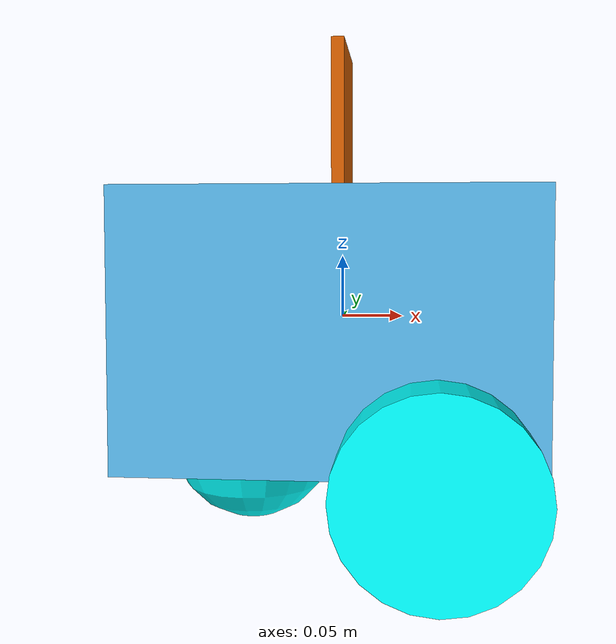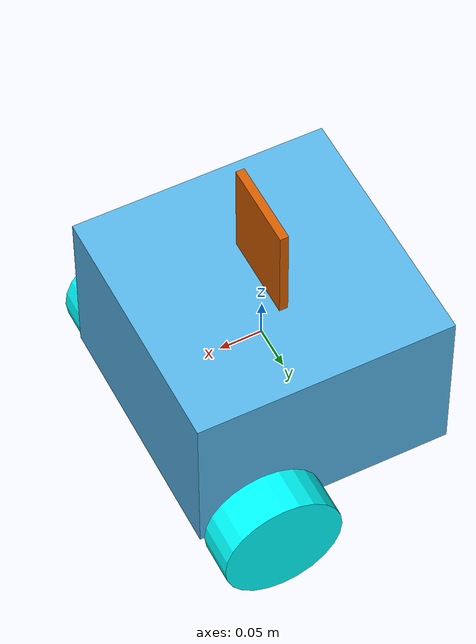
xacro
<?xml version="1.0" ?>
<!-- |    This document was autogenerated by xacro from robot.urdf.xacro               | -->
<!-- |    EDITING THIS FILE BY HAND IS NOT RECOMMENDED                                 | -->
<robot name="forklift" xmlns:xacro="http://www.ros.org/wiki/xacro">

  <xacro:include filename="inertial_macros.xacro"/>

  <link name="base_footprint">
    <inertial>
        <mass value="0.0001"/>
        <origin xyz="0 0 0"/>
        <inertia ixx="0.0001" ixy="0.0" ixz="0.0" iyy="0.0001" iyz="0.0" izz="0.0001"/>
      </inertial>
      <visual>
        <origin rpy="0 0 0" xyz="0 0 0"/>
        <geometry>
          <box size="0.001 0.001 0.001"/>
        </geometry>
      </visual>
</link>

<joint name="base_link_joint" type="fixed">
    <parent link="base_link"/>
    <child link="base_footprint"/>
    <origin xyz="0 0 -0.15" rpy="0 0 0"/>
</joint>

<link name="base_link">
    <visual>
        <origin xyz="0 0 0"/>
        <geometry>
            <box size="0.3 0.3 0.2"/>
        </geometry>
    </visual>
    <collision>
        <origin xyz="0 0 0"/>
        <geometry>
            <box size="0.3 0.3 0.2"/>
        </geometry>
    </collision>
    <xacro:inertial_box mass="500" x="0.3" y="0.3" z="0.2">
        <origin xyz="0 0 0" rpy="0 0 0"/>
    </xacro:inertial_box>
  </link>

  <link name="left_wheel">
    <visual>
      <origin xyz="0 0 0" rpy="0 0 0"/>
        <geometry>
            <cylinder radius="0.07" length="0.05"/>
        </geometry>
        <material name="Cyan">
          <color rgba="0 1.0 1.0 1.0"/>
        </material>
    </visual>
    <collision>
      <origin xyz="0 0 0" rpy="0 0 0"/>
        <geometry>
            <cylinder radius="0.07" length="0.05"/>
        </geometry>
    </collision>
    <xacro:inertial_cylinder mass="1" radius="0.07" length="0.05">
        <origin xyz="0 0 0" rpy="0 0 0"/>
    </xacro:inertial_cylinder>
  </link>

  <joint name="left_wheel_joint" type="continuous">
    <parent link="base_link"/>
    <child link="left_wheel"/>
    <origin xyz="0.075 ${0.15+0.025} -0.1" rpy="-${3.14/2} 0 0"/>
    <axis xyz="0 0 1"/>
  </joint>

  <link name="right_wheel">
    <visual>
      <origin xyz="0 0 0" rpy="0 0 0"/>
        <geometry>
            <cylinder radius="0.07" length="0.05"/>
        </geometry>
        <material name="Cyan">
          <color rgba="0 1.0 1.0 1.0"/>
        </material>
    </visual>
    <collision>
      <origin xyz="0 0 0" rpy="0 0 0"/>
        <geometry>
            <cylinder radius="0.07" length="0.05"/>
        </geometry>
    </collision>
    <xacro:inertial_cylinder mass="1" radius="0.07" length="0.05">
      <origin xyz="0 0 0" rpy=" 0 0 0"/>
    </xacro:inertial_cylinder>
  </link>

  <joint name="right_wheel_joint" type="continuous">
    <parent link="base_link"/>
    <child link="right_wheel"/>
    <origin xyz="0.075 -${0.15+0.025} -0.1" rpy="-${3.14/2} 0 0"/>
    <axis xyz="0 0 1"/>
  </joint>

  <link name="caster">
    <visual>
      <origin xyz="0 0 0" rpy="0 0 0"/>
        <geometry>
            <sphere radius="0.07"/>
        </geometry>
        <material name="Cyan">
          <color rgba="0 1.0 1.0 1.0"/>
        </material>
    </visual>
    <collision>
      <origin xyz="0 0 0" rpy="0 0 0"/>
        <geometry>
          <sphere radius="0.07"/>
        </geometry>
    </collision>
    <xacro:inertial_sphere mass="1" radius="0.07">
        <origin xyz="0 0 0" rpy="0 0 0"/>
    </xacro:inertial_sphere>
  </link>

  <joint name="caster_joint" type="fixed">
    <parent link="base_link"/>
    <child link="caster"/>
    <origin xyz="-0.075 0 -0.1" rpy="0 0 0"/>
  </joint>

  <!--Minimal friction because the caster is fixed-->
  <gazebo reference="caster">
    <material>Gazebo/DarkGrey</material>
    <mu1>0.1</mu1>
    <mu2>0.1</mu2>
    <kp>1000000.0</kp>
    <kd>1.0</kd>
  </gazebo>

  <link name="rplidar_link">
    <visual>
        <origin xyz="0 0 0" rpy="0 0 0"/>
        <geometry>
            <box size="0.01 0.1 0.2"/>
        </geometry>
    </visual>
    <collision>
        <origin xyz="0 0 0" rpy="0 0 0"/>
        <geometry>
            <box size="0.01 0.3 0.2"/>
        </geometry>
    </collision>
    <inertial>
        <mass value="0.001"/>
        <origin xyz="0.005 0.15 0.1" rpy="0 0 0"/>
        <inertia ixx="0.075" ixy="0" ixz="0" iyy="0.075" iyz="0" izz="0.0045"/>
    </inertial>
</link>

<joint name="rplidar_joint" type="fixed">
    <parent link="base_link"/>
    <child link="rplidar_link"/>
    <origin xyz="0 0 0.12" rpy="0 0 0"/>
</joint>

<gazebo reference="rplidar_link">
    <sensor name="rplidar" type="gpu_lidar">
      <update_rate>10.0</update_rate>
      <visualize>true</visualize>
      <always_on>true</always_on>
      <gz_frame_id>rplidar_link</gz_frame_id>
      <topic>scan</topic>
      <lidar>
        <scan>
          <horizontal>
            <samples>360</samples>
            <resolution>1.0</resolution>
            <min_angle>0.000</min_angle>
            <max_angle>6.280000</max_angle>
          </horizontal>
        </scan>
        <range>
          <min>0.164</min>
          <max>20.0</max>
          <resolution>0.01</resolution>
        </range>
      </lidar>
      <plugin name="dummy" filename="dummyfile"></plugin>
    </sensor>
  </gazebo>

<gazebo reference="rplidar_joint">
<preserveFixedJoint>true</preserveFixedJoint>
</gazebo>

<gazebo>
<plugin
  filename="gz-sim-diff-drive-system"
  name="gz::sim::systems::DiffDrive">

      <left_joint>left_wheel_joint</left_joint>
      <right_joint>right_wheel_joint</right_joint>
      <wheel_separation>0.35</wheel_separation>
      <wheel_radius>0.07</wheel_radius>
      <odom_publish_frequency>30</odom_publish_frequency>
      <odom_topic>/odom</odom_topic>
      <frame_id>odom</frame_id>
      <tf_topic>tf</tf_topic>
      <topic>/cmd_vel</topic>
      <child_frame_id>base_link</child_frame_id>

      <max_linear_acceleration>2</max_linear_acceleration>
        <min_linear_acceleration>-2</min_linear_acceleration>
        <max_angular_acceleration>3</max_angular_acceleration>
        <min_angular_acceleration>-3</min_angular_acceleration>
        <max_linear_velocity>0.5</max_linear_velocity>
        <min_linear_velocity>-0.5</min_linear_velocity>
        <max_angular_velocity>2.0</max_angular_velocity>
        <min_angular_velocity>-2.0</min_angular_velocity>

  </plugin>

  <plugin filename="gz-sim-joint-state-publisher-system" name="gz::sim::systems::JointStatePublisher">
    <topic>joint_states</topic>
    <joint_name>left_wheel_joint</joint_name>
    <joint_name>right_wheel_joint</joint_name>
    <joint_name>caster_joint</joint_name>
  </plugin>

</gazebo>

</robot>
